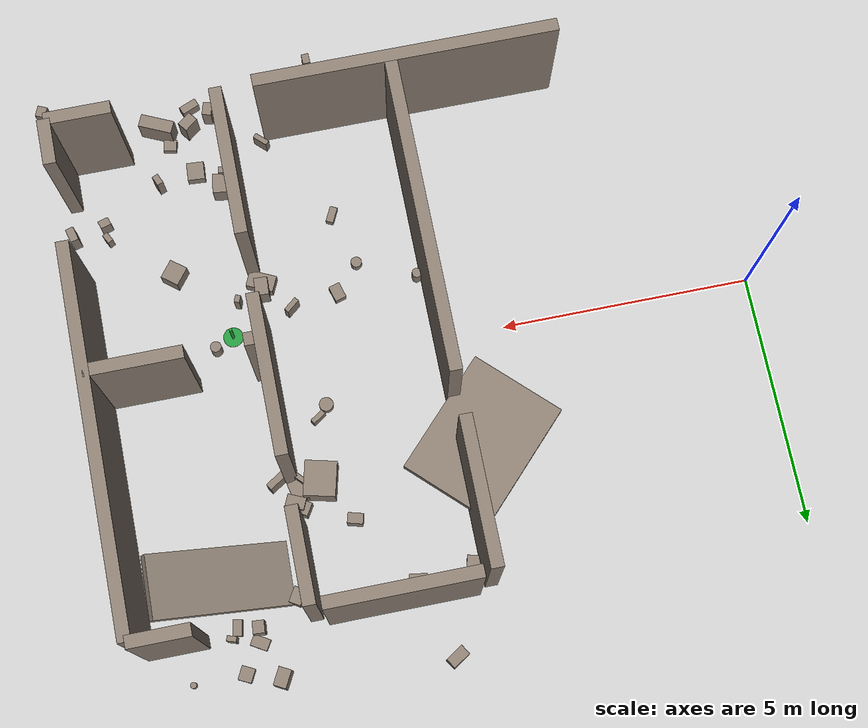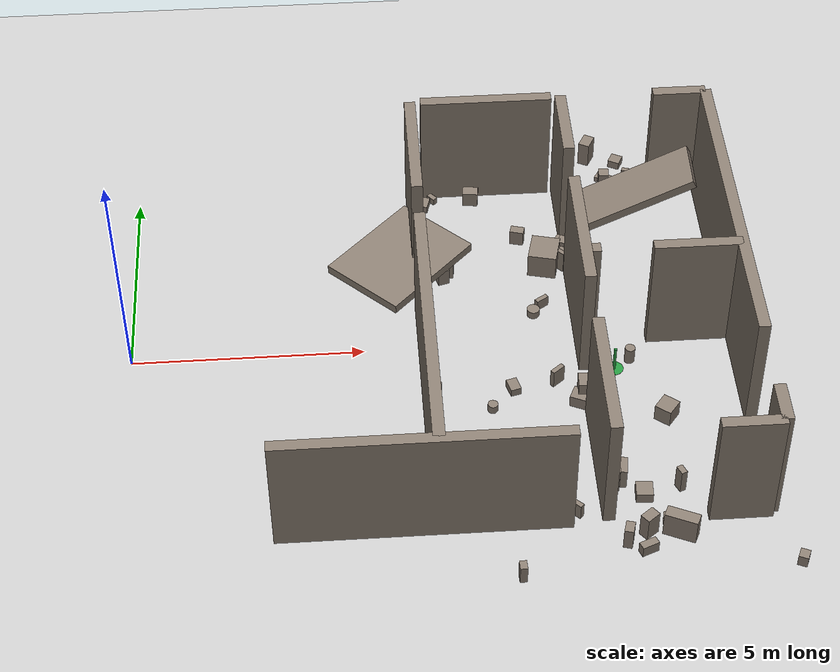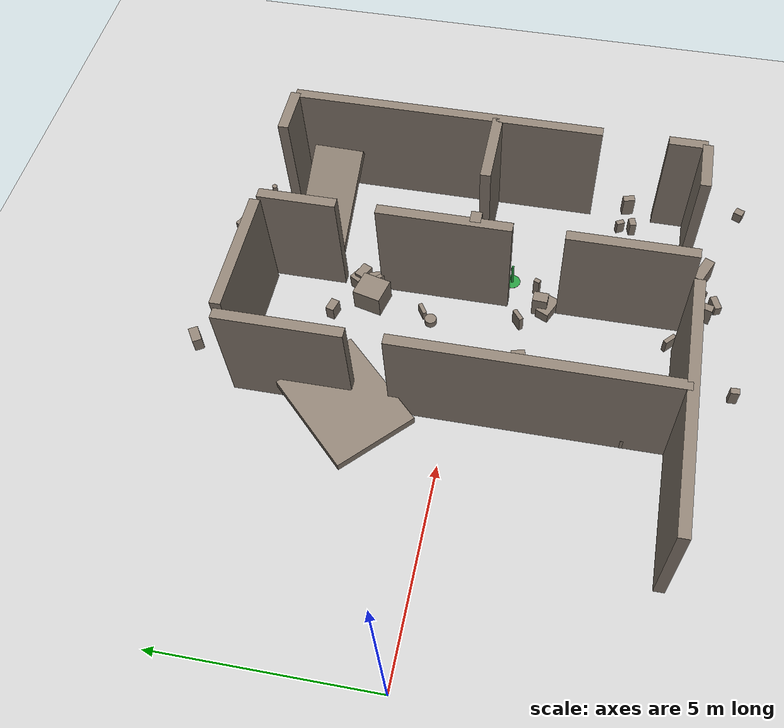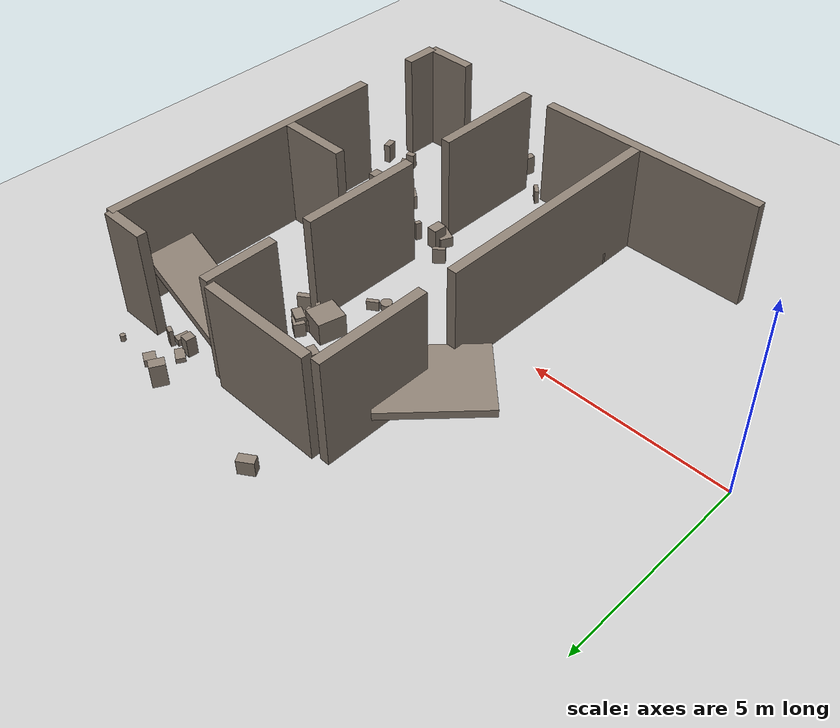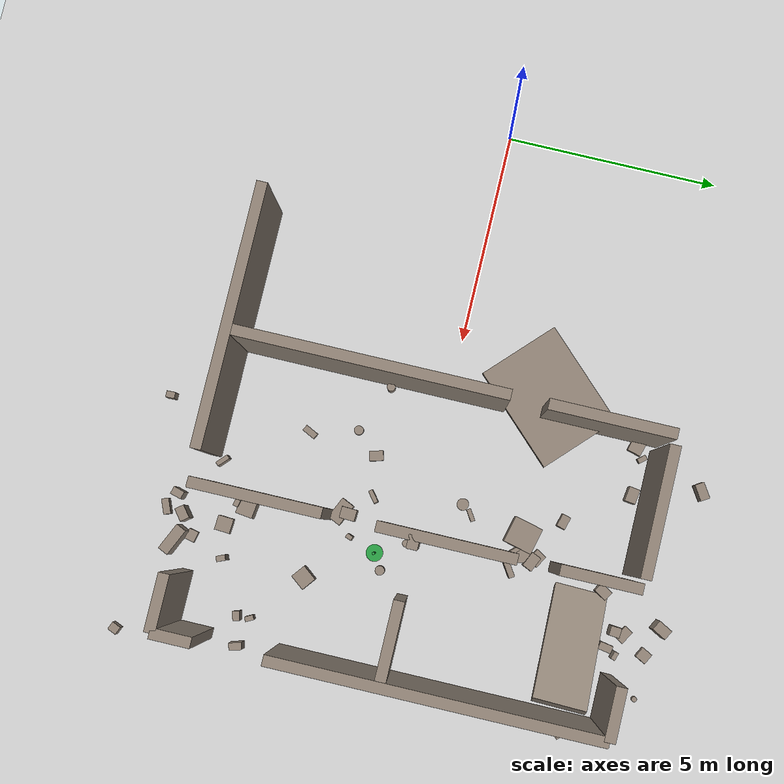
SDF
<sdf version="1.6">
 <world name="default">
  <model name="ground_plane">
   <static>1</static>
   <link name="link">
    <collision name="collision">
     <geometry><plane><normal>0 0 1</normal><size>100 100</size></plane></geometry>
     <surface><friction><ode><mu>100</mu><mu2>50</mu2></ode></friction></surface>
    </collision>
    <visual name="visual">
     <cast_shadows>0</cast_shadows>
     <geometry><plane><normal>0 0 1</normal><size>100 100</size></plane></geometry>
     <material>
      <script><uri>file://media/materials/scripts/gazebo.material</uri><name>Gazebo/Grey</name></script>
     </material>
    </visual>
   </link>
  </model>
  <model name="outer1_0">
   <static>1</static>
   <pose>13.000 -4.543 1.400 0 0.0000 1.5708</pose>
   <link name="l">
    <collision name="c"><geometry><box><size>0.913 0.250 2.800</size></box></geometry></collision>
    <visual name="v">
     <geometry><box><size>0.913 0.250 2.800</size></box></geometry>
     <material><ambient>0.55 0.5 0.45 1</ambient><diffuse>0.55 0.5 0.45 1</diffuse></material>
    </visual>
   </link>
  </model>
  <model name="outer1_1">
   <static>1</static>
   <pose>13.000 1.237 1.400 0 0.0000 1.5708</pose>
   <link name="l">
    <collision name="c"><geometry><box><size>7.526 0.250 2.800</size></box></geometry></collision>
    <visual name="v">
     <geometry><box><size>7.526 0.250 2.800</size></box></geometry>
     <material><ambient>0.55 0.5 0.45 1</ambient><diffuse>0.55 0.5 0.45 1</diffuse></material>
    </visual>
   </link>
  </model>
  <model name="outer2_0">
   <static>1</static>
   <pose>5.992 -5.000 1.400 0 0.0000 0.0000</pose>
   <link name="l">
    <collision name="c"><geometry><box><size>5.985 0.250 2.800</size></box></geometry></collision>
    <visual name="v">
     <geometry><box><size>5.985 0.250 2.800</size></box></geometry>
     <material><ambient>0.55 0.5 0.45 1</ambient><diffuse>0.55 0.5 0.45 1</diffuse></material>
    </visual>
   </link>
  </model>
  <model name="outer2_1">
   <static>1</static>
   <pose>12.352 -5.000 1.400 0 0.0000 0.0000</pose>
   <link name="l">
    <collision name="c"><geometry><box><size>1.296 0.250 2.800</size></box></geometry></collision>
    <visual name="v">
     <geometry><box><size>1.296 0.250 2.800</size></box></geometry>
     <material><ambient>0.55 0.5 0.45 1</ambient><diffuse>0.55 0.5 0.45 1</diffuse></material>
    </visual>
   </link>
  </model>
  <model name="outer3_1">
   <static>1</static>
   <pose>8.014 5.000 1.400 0 0.0000 0.0000</pose>
   <link name="l">
    <collision name="c"><geometry><box><size>2.950 0.250 2.800</size></box></geometry></collision>
    <visual name="v">
     <geometry><box><size>2.950 0.250 2.800</size></box></geometry>
     <material><ambient>0.55 0.5 0.45 1</ambient><diffuse>0.55 0.5 0.45 1</diffuse></material>
    </visual>
   </link>
  </model>
  <model name="outer3_2">
   <static>1</static>
   <pose>12.402 5.000 1.400 0 0.0000 0.0000</pose>
   <link name="l">
    <collision name="c"><geometry><box><size>1.195 0.250 2.800</size></box></geometry></collision>
    <visual name="v">
     <geometry><box><size>1.195 0.250 2.800</size></box></geometry>
     <material><ambient>0.55 0.5 0.45 1</ambient><diffuse>0.55 0.5 0.45 1</diffuse></material>
    </visual>
   </link>
  </model>
  <model name="part0_0">
   <static>1</static>
   <pose>6.300 -1.836 1.400 0 0.0000 1.5708</pose>
   <link name="l">
    <collision name="c"><geometry><box><size>6.328 0.250 2.800</size></box></geometry></collision>
    <visual name="v">
     <geometry><box><size>6.328 0.250 2.800</size></box></geometry>
     <material><ambient>0.55 0.5 0.45 1</ambient><diffuse>0.55 0.5 0.45 1</diffuse></material>
    </visual>
   </link>
  </model>
  <model name="part0_1">
   <static>1</static>
   <pose>6.300 3.576 1.400 0 0.0000 1.5708</pose>
   <link name="l">
    <collision name="c"><geometry><box><size>2.848 0.250 2.800</size></box></geometry></collision>
    <visual name="v">
     <geometry><box><size>2.848 0.250 2.800</size></box></geometry>
     <material><ambient>0.55 0.5 0.45 1</ambient><diffuse>0.55 0.5 0.45 1</diffuse></material>
    </visual>
   </link>
  </model>
  <model name="part1_0">
   <static>1</static>
   <pose>9.700 -3.518 1.400 0 0.0000 1.5708</pose>
   <link name="l">
    <collision name="c"><geometry><box><size>2.964 0.250 2.800</size></box></geometry></collision>
    <visual name="v">
     <geometry><box><size>2.964 0.250 2.800</size></box></geometry>
     <material><ambient>0.55 0.5 0.45 1</ambient><diffuse>0.55 0.5 0.45 1</diffuse></material>
    </visual>
   </link>
  </model>
  <model name="part1_1">
   <static>1</static>
   <pose>9.700 0.699 1.400 0 0.0000 1.5708</pose>
   <link name="l">
    <collision name="c"><geometry><box><size>3.111 0.250 2.800</size></box></geometry></collision>
    <visual name="v">
     <geometry><box><size>3.111 0.250 2.800</size></box></geometry>
     <material><ambient>0.55 0.5 0.45 1</ambient><diffuse>0.55 0.5 0.45 1</diffuse></material>
    </visual>
   </link>
  </model>
  <model name="part1_2">
   <static>1</static>
   <pose>9.700 4.088 1.400 0 0.0000 1.5708</pose>
   <link name="l">
    <collision name="c"><geometry><box><size>1.823 0.250 2.800</size></box></geometry></collision>
    <visual name="v">
     <geometry><box><size>1.823 0.250 2.800</size></box></geometry>
     <material><ambient>0.55 0.5 0.45 1</ambient><diffuse>0.55 0.5 0.45 1</diffuse></material>
    </visual>
   </link>
  </model>
  <model name="back_0">
   <static>1</static>
   <pose>9.856 0.000 1.400 0 0.0000 0.0000</pose>
   <link name="l">
    <collision name="c"><geometry><box><size>0.311 0.250 2.800</size></box></geometry></collision>
    <visual name="v">
     <geometry><box><size>0.311 0.250 2.800</size></box></geometry>
     <material><ambient>0.55 0.5 0.45 1</ambient><diffuse>0.55 0.5 0.45 1</diffuse></material>
    </visual>
   </link>
  </model>
  <model name="back_1">
   <static>1</static>
   <pose>12.061 0.000 1.400 0 0.0000 0.0000</pose>
   <link name="l">
    <collision name="c"><geometry><box><size>1.878 0.250 2.800</size></box></geometry></collision>
    <visual name="v">
     <geometry><box><size>1.878 0.250 2.800</size></box></geometry>
     <material><ambient>0.55 0.5 0.45 1</ambient><diffuse>0.55 0.5 0.45 1</diffuse></material>
    </visual>
   </link>
  </model>
  <model name="rubble_19">
   <static>1</static>
   <pose>13.121 -3.449 0.260 0 0.0000 0.2639</pose>
   <link name="l">
    <collision name="c"><geometry><box><size>0.168 0.287 0.520</size></box></geometry></collision>
    <visual name="v">
     <geometry><box><size>0.168 0.287 0.520</size></box></geometry>
     <material><ambient>0.55 0.5 0.45 1</ambient><diffuse>0.55 0.5 0.45 1</diffuse></material>
    </visual>
   </link>
  </model>
  <model name="rubble_20">
   <static>1</static>
   <pose>12.449 -3.308 0.168 0 0.0000 0.4721</pose>
   <link name="l">
    <collision name="c"><geometry><box><size>0.118 0.201 0.336</size></box></geometry></collision>
    <visual name="v">
     <geometry><box><size>0.118 0.201 0.336</size></box></geometry>
     <material><ambient>0.55 0.5 0.45 1</ambient><diffuse>0.55 0.5 0.45 1</diffuse></material>
    </visual>
   </link>
  </model>
  <model name="rubble_21">
   <static>1</static>
   <pose>12.460 -3.608 0.199 0 0.0000 0.2851</pose>
   <link name="l">
    <collision name="c"><geometry><box><size>0.221 0.160 0.399</size></box></geometry></collision>
    <visual name="v">
     <geometry><box><size>0.221 0.160 0.399</size></box></geometry>
     <material><ambient>0.55 0.5 0.45 1</ambient><diffuse>0.55 0.5 0.45 1</diffuse></material>
    </visual>
   </link>
  </model>
  <model name="rubble_22">
   <static>1</static>
   <pose>11.250 -4.245 0.283 0 0.0000 1.9764</pose>
   <link name="l">
    <collision name="c"><geometry><box><size>0.210 0.132 0.565</size></box></geometry></collision>
    <visual name="v">
     <geometry><box><size>0.210 0.132 0.565</size></box></geometry>
     <material><ambient>0.55 0.5 0.45 1</ambient><diffuse>0.55 0.5 0.45 1</diffuse></material>
    </visual>
   </link>
  </model>
  <model name="rubble_23">
   <static>1</static>
   <pose>9.991 -3.958 0.242 0 0.0000 1.4453</pose>
   <link name="l">
    <collision name="c"><geometry><box><size>0.399 0.385 0.484</size></box></geometry></collision>
    <visual name="v">
     <geometry><box><size>0.399 0.385 0.484</size></box></geometry>
     <material><ambient>0.55 0.5 0.45 1</ambient><diffuse>0.55 0.5 0.45 1</diffuse></material>
    </visual>
   </link>
  </model>
  <model name="rubble_24">
   <static>1</static>
   <pose>10.452 -5.362 0.284 0 0.0000 2.2341</pose>
   <link name="l">
    <collision name="c"><geometry><box><size>0.224 0.320 0.567</size></box></geometry></collision>
    <visual name="v">
     <geometry><box><size>0.224 0.320 0.567</size></box></geometry>
     <material><ambient>0.55 0.5 0.45 1</ambient><diffuse>0.55 0.5 0.45 1</diffuse></material>
    </visual>
   </link>
  </model>
  <model name="rubble_25">
   <static>1</static>
   <pose>11.085 -5.432 0.295 0 0.0000 2.7132</pose>
   <link name="l">
    <collision name="c"><geometry><box><size>0.686 0.257 0.591</size></box></geometry></collision>
    <visual name="v">
     <geometry><box><size>0.686 0.257 0.591</size></box></geometry>
     <material><ambient>0.55 0.5 0.45 1</ambient><diffuse>0.55 0.5 0.45 1</diffuse></material>
    </visual>
   </link>
  </model>
  <model name="rubble_26">
   <static>1</static>
   <pose>10.487 -4.410 0.116 0 0.0000 1.5079</pose>
   <link name="l">
    <collision name="c"><geometry><box><size>0.367 0.347 0.232</size></box></geometry></collision>
    <visual name="v">
     <geometry><box><size>0.367 0.347 0.232</size></box></geometry>
     <material><ambient>0.55 0.5 0.45 1</ambient><diffuse>0.55 0.5 0.45 1</diffuse></material>
    </visual>
   </link>
  </model>
  <model name="rubble_27">
   <static>1</static>
   <pose>10.911 -5.094 0.070 0 0.0000 2.9249</pose>
   <link name="l">
    <collision name="c"><geometry><box><size>0.262 0.233 0.139</size></box></geometry></collision>
    <visual name="v">
     <geometry><box><size>0.262 0.233 0.139</size></box></geometry>
     <material><ambient>0.55 0.5 0.45 1</ambient><diffuse>0.55 0.5 0.45 1</diffuse></material>
    </visual>
   </link>
  </model>
  <model name="rubble_28">
   <static>1</static>
   <pose>9.057 -4.779 0.183 0 0.0000 2.3812</pose>
   <link name="l">
    <collision name="c"><geometry><box><size>0.316 0.105 0.366</size></box></geometry></collision>
    <visual name="v">
     <geometry><box><size>0.316 0.105 0.366</size></box></geometry>
     <material><ambient>0.55 0.5 0.45 1</ambient><diffuse>0.55 0.5 0.45 1</diffuse></material>
    </visual>
   </link>
  </model>
  <model name="rubble_29">
   <static>1</static>
   <pose>9.911 -4.187 0.292 0 0.0000 1.3518</pose>
   <link name="l">
    <collision name="c"><geometry><box><size>0.120 0.203 0.584</size></box></geometry></collision>
    <visual name="v">
     <geometry><box><size>0.120 0.203 0.584</size></box></geometry>
     <material><ambient>0.55 0.5 0.45 1</ambient><diffuse>0.55 0.5 0.45 1</diffuse></material>
    </visual>
   </link>
  </model>
  <model name="rubble_30">
   <static>1</static>
   <pose>10.388 -5.816 0.129 0 0.0000 0.3913</pose>
   <link name="l">
    <collision name="c"><geometry><box><size>0.366 0.168 0.258</size></box></geometry></collision>
    <visual name="v">
     <geometry><box><size>0.366 0.168 0.258</size></box></geometry>
     <material><ambient>0.55 0.5 0.45 1</ambient><diffuse>0.55 0.5 0.45 1</diffuse></material>
    </visual>
   </link>
  </model>
  <model name="rubble_31">
   <static>1</static>
   <pose>10.019 -5.589 0.256 0 0.0000 1.2972</pose>
   <link name="l">
    <collision name="c"><geometry><box><size>0.268 0.187 0.513</size></box></geometry></collision>
    <visual name="v">
     <geometry><box><size>0.268 0.187 0.513</size></box></geometry>
     <material><ambient>0.55 0.5 0.45 1</ambient><diffuse>0.55 0.5 0.45 1</diffuse></material>
    </visual>
   </link>
  </model>
  <model name="rubble_32">
   <static>1</static>
   <pose>11.201 5.745 0.095 0 0.0000 2.6650</pose>
   <link name="l">
    <collision name="c"><geometry><box><size>0.266 0.278 0.190</size></box></geometry></collision>
    <visual name="v">
     <geometry><box><size>0.266 0.278 0.190</size></box></geometry>
     <material><ambient>0.55 0.5 0.45 1</ambient><diffuse>0.55 0.5 0.45 1</diffuse></material>
    </visual>
   </link>
  </model>
  <model name="rubble_33">
   <static>1</static>
   <pose>10.845 5.203 0.062 0 0.0000 2.6069</pose>
   <link name="l">
    <collision name="c"><geometry><box><size>0.347 0.225 0.125</size></box></geometry></collision>
    <visual name="v">
     <geometry><box><size>0.347 0.225 0.125</size></box></geometry>
     <material><ambient>0.55 0.5 0.45 1</ambient><diffuse>0.55 0.5 0.45 1</diffuse></material>
    </visual>
   </link>
  </model>
  <model name="rubble_34">
   <static>1</static>
   <pose>11.221 4.847 0.090 0 0.0000 2.9650</pose>
   <link name="l">
    <collision name="c"><geometry><box><size>0.182 0.311 0.181</size></box></geometry></collision>
    <visual name="v">
     <geometry><box><size>0.182 0.311 0.181</size></box></geometry>
     <material><ambient>0.55 0.5 0.45 1</ambient><diffuse>0.55 0.5 0.45 1</diffuse></material>
    </visual>
   </link>
  </model>
  <model name="rubble_35">
   <static>1</static>
   <pose>10.807 4.944 0.246 0 0.0000 3.0676</pose>
   <link name="l">
    <collision name="c"><geometry><box><size>0.229 0.247 0.492</size></box></geometry></collision>
    <visual name="v">
     <geometry><box><size>0.229 0.247 0.492</size></box></geometry>
     <material><ambient>0.55 0.5 0.45 1</ambient><diffuse>0.55 0.5 0.45 1</diffuse></material>
    </visual>
   </link>
  </model>
  <model name="rubble_36">
   <static>1</static>
   <pose>10.522 5.966 0.299 0 0.0000 1.0816</pose>
   <link name="l">
    <collision name="c"><geometry><box><size>0.364 0.253 0.598</size></box></geometry></collision>
    <visual name="v">
     <geometry><box><size>0.364 0.253 0.598</size></box></geometry>
     <material><ambient>0.55 0.5 0.45 1</ambient><diffuse>0.55 0.5 0.45 1</diffuse></material>
    </visual>
   </link>
  </model>
  <model name="rubble_42">
   <static>1</static>
   <pose>6.778 4.727 0.081 0 0.0000 2.2804</pose>
   <link name="l">
    <collision name="c"><geometry><box><size>0.216 0.119 0.162</size></box></geometry></collision>
    <visual name="v">
     <geometry><box><size>0.216 0.119 0.162</size></box></geometry>
     <material><ambient>0.55 0.5 0.45 1</ambient><diffuse>0.55 0.5 0.45 1</diffuse></material>
    </visual>
   </link>
  </model>
  <model name="rubble_43">
   <static>1</static>
   <pose>6.500 4.549 0.091 0 0.0000 2.8756</pose>
   <link name="l">
    <collision name="c"><geometry><box><size>0.374 0.330 0.181</size></box></geometry></collision>
    <visual name="v">
     <geometry><box><size>0.374 0.330 0.181</size></box></geometry>
     <material><ambient>0.55 0.5 0.45 1</ambient><diffuse>0.55 0.5 0.45 1</diffuse></material>
    </visual>
   </link>
  </model>
  <model name="rubble_45">
   <static>1</static>
   <pose>6.820 2.123 0.199 0 0.0000 0.2914</pose>
   <link name="l">
    <collision name="c"><geometry><box><size>0.252 0.337 0.398</size></box></geometry></collision>
    <visual name="v">
     <geometry><box><size>0.252 0.337 0.398</size></box></geometry>
     <material><ambient>0.55 0.5 0.45 1</ambient><diffuse>0.55 0.5 0.45 1</diffuse></material>
    </visual>
   </link>
  </model>
  <model name="rubble_46">
   <static>1</static>
   <pose>6.761 2.348 0.252 0 0.0000 3.0254</pose>
   <link name="l">
    <collision name="c"><geometry><box><size>0.695 0.332 0.504</size></box></geometry></collision>
    <visual name="v">
     <geometry><box><size>0.695 0.332 0.504</size></box></geometry>
     <material><ambient>0.55 0.5 0.45 1</ambient><diffuse>0.55 0.5 0.45 1</diffuse></material>
    </visual>
   </link>
  </model>
  <model name="rubble_48">
   <static>1</static>
   <pose>6.154 2.716 0.271 0 0.0000 1.3277</pose>
   <link name="l">
    <collision name="c"><geometry><box><size>0.334 0.246 0.541</size></box></geometry></collision>
    <visual name="v">
     <geometry><box><size>0.334 0.246 0.541</size></box></geometry>
     <material><ambient>0.55 0.5 0.45 1</ambient><diffuse>0.55 0.5 0.45 1</diffuse></material>
    </visual>
   </link>
  </model>
  <model name="rubble_49">
   <static>1</static>
   <pose>5.948 2.048 0.114 0 0.0000 2.5027</pose>
   <link name="l">
    <collision name="c"><geometry><box><size>0.610 0.395 0.228</size></box></geometry></collision>
    <visual name="v">
     <geometry><box><size>0.610 0.395 0.228</size></box></geometry>
     <material><ambient>0.55 0.5 0.45 1</ambient><diffuse>0.55 0.5 0.45 1</diffuse></material>
    </visual>
   </link>
  </model>
  <model name="rubble_50">
   <static>1</static>
   <pose>9.522 2.297 0.264 0 0.0000 2.3385</pose>
   <link name="l">
    <collision name="c"><geometry><box><size>0.222 0.100 0.529</size></box></geometry></collision>
    <visual name="v">
     <geometry><box><size>0.222 0.100 0.529</size></box></geometry>
     <material><ambient>0.55 0.5 0.45 1</ambient><diffuse>0.55 0.5 0.45 1</diffuse></material>
    </visual>
   </link>
  </model>
  <model name="rubble_51">
   <static>1</static>
   <pose>9.144 2.391 0.295 0 0.0000 1.3324</pose>
   <link name="l">
    <collision name="c"><geometry><box><size>0.692 0.630 0.590</size></box></geometry></collision>
    <visual name="v">
     <geometry><box><size>0.692 0.630 0.590</size></box></geometry>
     <material><ambient>0.55 0.5 0.45 1</ambient><diffuse>0.55 0.5 0.45 1</diffuse></material>
    </visual>
   </link>
  </model>
  <model name="rubble_52">
   <static>1</static>
   <pose>9.691 2.729 0.228 0 0.0000 2.7137</pose>
   <link name="l">
    <collision name="c"><geometry><box><size>0.374 0.243 0.457</size></box></geometry></collision>
    <visual name="v">
     <geometry><box><size>0.374 0.243 0.457</size></box></geometry>
     <material><ambient>0.55 0.5 0.45 1</ambient><diffuse>0.55 0.5 0.45 1</diffuse></material>
    </visual>
   </link>
  </model>
  <model name="rubble_53">
   <static>1</static>
   <pose>9.613 2.508 0.174 0 0.0000 0.2317</pose>
   <link name="l">
    <collision name="c"><geometry><box><size>0.292 0.426 0.349</size></box></geometry></collision>
    <visual name="v">
     <geometry><box><size>0.292 0.426 0.349</size></box></geometry>
     <material><ambient>0.55 0.5 0.45 1</ambient><diffuse>0.55 0.5 0.45 1</diffuse></material>
    </visual>
   </link>
  </model>
  <model name="rubble_54">
   <static>1</static>
   <pose>9.987 2.256 0.258 0 0.0000 2.1490</pose>
   <link name="l">
    <collision name="c"><geometry><box><size>0.137 0.380 0.515</size></box></geometry></collision>
    <visual name="v">
     <geometry><box><size>0.137 0.380 0.515</size></box></geometry>
     <material><ambient>0.55 0.5 0.45 1</ambient><diffuse>0.55 0.5 0.45 1</diffuse></material>
    </visual>
   </link>
  </model>
  <model name="rubble_55">
   <static>1</static>
   <pose>9.586 2.834 0.188 0 0.0000 2.5948</pose>
   <link name="l">
    <collision name="c"><geometry><box><size>0.313 0.271 0.375</size></box></geometry></collision>
    <visual name="v">
     <geometry><box><size>0.313 0.271 0.375</size></box></geometry>
     <material><ambient>0.55 0.5 0.45 1</ambient><diffuse>0.55 0.5 0.45 1</diffuse></material>
    </visual>
   </link>
  </model>
  <model name="rubble_56">
   <static>1</static>
   <pose>8.124 -1.337 0.091 0 0.0000 1.8485</pose>
   <link name="l">
    <collision name="c"><geometry><box><size>0.326 0.232 0.181</size></box></geometry></collision>
    <visual name="v">
     <geometry><box><size>0.326 0.232 0.181</size></box></geometry>
     <material><ambient>0.55 0.5 0.45 1</ambient><diffuse>0.55 0.5 0.45 1</diffuse></material>
    </visual>
   </link>
  </model>
  <model name="rubble_57">
   <static>1</static>
   <pose>9.590 -1.640 0.276 0 0.0000 1.5221</pose>
   <link name="l">
    <collision name="c"><geometry><box><size>0.359 0.269 0.551</size></box></geometry></collision>
    <visual name="v">
     <geometry><box><size>0.359 0.269 0.551</size></box></geometry>
     <material><ambient>0.55 0.5 0.45 1</ambient><diffuse>0.55 0.5 0.45 1</diffuse></material>
    </visual>
   </link>
  </model>
  <model name="rubble_58">
   <static>1</static>
   <pose>9.579 -1.831 0.139 0 0.0000 1.1398</pose>
   <link name="l">
    <collision name="c"><geometry><box><size>0.329 0.554 0.278</size></box></geometry></collision>
    <visual name="v">
     <geometry><box><size>0.329 0.554 0.278</size></box></geometry>
     <material><ambient>0.55 0.5 0.45 1</ambient><diffuse>0.55 0.5 0.45 1</diffuse></material>
    </visual>
   </link>
  </model>
  <model name="rubble_59">
   <static>1</static>
   <pose>10.100 -1.494 0.249 0 0.0000 2.7753</pose>
   <link name="l">
    <collision name="c"><geometry><box><size>0.107 0.149 0.499</size></box></geometry></collision>
    <visual name="v">
     <geometry><box><size>0.107 0.149 0.499</size></box></geometry>
     <material><ambient>0.55 0.5 0.45 1</ambient><diffuse>0.55 0.5 0.45 1</diffuse></material>
    </visual>
   </link>
  </model>
  <model name="rubble_60">
   <static>1</static>
   <pose>9.069 -1.177 0.215 0 0.0000 2.2517</pose>
   <link name="l">
    <collision name="c"><geometry><box><size>0.104 0.314 0.430</size></box></geometry></collision>
    <visual name="v">
     <geometry><box><size>0.104 0.314 0.430</size></box></geometry>
     <material><ambient>0.55 0.5 0.45 1</ambient><diffuse>0.55 0.5 0.45 1</diffuse></material>
    </visual>
   </link>
  </model>
  <model name="leaning_0">
   <static>1</static>
   <pose>11.361 3.978 0.757 0 0.4809 3.1165</pose>
   <link name="l">
    <collision name="c"><geometry><box><size>2.889 1.237 0.200</size></box></geometry></collision>
    <visual name="v">
     <geometry><box><size>2.889 1.237 0.200</size></box></geometry>
     <material><ambient>0.55 0.5 0.45 1</ambient><diffuse>0.55 0.5 0.45 1</diffuse></material>
    </visual>
   </link>
  </model>
  <model name="floor_0">
   <static>1</static>
   <pose>5.912 2.253 0.600 0 0.0000 0.8047</pose>
   <link name="l">
    <collision name="c"><geometry><box><size>2.585 1.981 0.200</size></box></geometry></collision>
    <visual name="v">
     <geometry><box><size>2.585 1.981 0.200</size></box></geometry>
     <material><ambient>0.55 0.5 0.45 1</ambient><diffuse>0.55 0.5 0.45 1</diffuse></material>
    </visual>
   </link>
  </model>
  <model name="debris_1">
   <static>1</static>
   <pose>8.764 0.886 0.088 0 0.0000 0.0000</pose>
   <link name="l">
    <collision name="c">
     <geometry><cylinder><radius>0.140</radius><length>0.176</length></cylinder></geometry>
    </collision>
    <visual name="v">
     <geometry><cylinder><radius>0.140</radius><length>0.176</length></cylinder></geometry>
     <material><ambient>0.55 0.5 0.45 1</ambient><diffuse>0.55 0.5 0.45 1</diffuse></material>
    </visual>
   </link>
  </model>
  <model name="debris_7">
   <static>1</static>
   <pose>9.949 -0.193 0.207 0 0.0000 0.0000</pose>
   <link name="l">
    <collision name="c">
     <geometry><cylinder><radius>0.082</radius><length>0.414</length></cylinder></geometry>
    </collision>
    <visual name="v">
     <geometry><cylinder><radius>0.082</radius><length>0.414</length></cylinder></geometry>
     <material><ambient>0.55 0.5 0.45 1</ambient><diffuse>0.55 0.5 0.45 1</diffuse></material>
    </visual>
   </link>
  </model>
  <model name="debris_9">
   <static>1</static>
   <pose>8.968 1.121 0.129 0 0.0000 0.5744</pose>
   <link name="l">
    <collision name="c"><geometry><box><size>0.301 0.102 0.259</size></box></geometry></collision>
    <visual name="v">
     <geometry><box><size>0.301 0.102 0.259</size></box></geometry>
     <material><ambient>0.55 0.5 0.45 1</ambient><diffuse>0.55 0.5 0.45 1</diffuse></material>
    </visual>
   </link>
  </model>
  <model name="debris_12">
   <static>1</static>
   <pose>8.623 3.249 0.184 0 0.0000 2.8749</pose>
   <link name="l">
    <collision name="c"><geometry><box><size>0.307 0.207 0.368</size></box></geometry></collision>
    <visual name="v">
     <geometry><box><size>0.307 0.207 0.368</size></box></geometry>
     <material><ambient>0.55 0.5 0.45 1</ambient><diffuse>0.55 0.5 0.45 1</diffuse></material>
    </visual>
   </link>
  </model>
  <model name="debris_15">
   <static>1</static>
   <pose>10.692 -0.636 0.190 0 0.0000 0.0000</pose>
   <link name="l">
    <collision name="c">
     <geometry><cylinder><radius>0.110</radius><length>0.381</length></cylinder></geometry>
    </collision>
    <visual name="v">
     <geometry><cylinder><radius>0.110</radius><length>0.381</length></cylinder></geometry>
     <material><ambient>0.55 0.5 0.45 1</ambient><diffuse>0.55 0.5 0.45 1</diffuse></material>
    </visual>
   </link>
  </model>
  <model name="debris_17">
   <static>1</static>
   <pose>11.347 5.058 0.220 0 0.0000 1.2590</pose>
   <link name="l">
    <collision name="c"><geometry><box><size>0.103 0.188 0.440</size></box></geometry></collision>
    <visual name="v">
     <geometry><box><size>0.103 0.188 0.440</size></box></geometry>
     <material><ambient>0.55 0.5 0.45 1</ambient><diffuse>0.55 0.5 0.45 1</diffuse></material>
    </visual>
   </link>
  </model>
  <model name="debris_25">
   <static>1</static>
   <pose>6.236 -3.915 0.153 0 0.0000 0.0000</pose>
   <link name="l">
    <collision name="c">
     <geometry><cylinder><radius>0.070</radius><length>0.305</length></cylinder></geometry>
    </collision>
    <visual name="v">
     <geometry><cylinder><radius>0.070</radius><length>0.305</length></cylinder></geometry>
     <material><ambient>0.55 0.5 0.45 1</ambient><diffuse>0.55 0.5 0.45 1</diffuse></material>
    </visual>
   </link>
  </model>
  <model name="debris_26">
   <static>1</static>
   <pose>7.662 4.660 0.178 0 0.0000 3.0044</pose>
   <link name="l">
    <collision name="c"><geometry><box><size>0.349 0.257 0.356</size></box></geometry></collision>
    <visual name="v">
     <geometry><box><size>0.349 0.257 0.356</size></box></geometry>
     <material><ambient>0.55 0.5 0.45 1</ambient><diffuse>0.55 0.5 0.45 1</diffuse></material>
    </visual>
   </link>
  </model>
  <model name="debris_27">
   <static>1</static>
   <pose>12.226 5.751 0.081 0 0.0000 0.0000</pose>
   <link name="l">
    <collision name="c">
     <geometry><cylinder><radius>0.062</radius><length>0.161</length></cylinder></geometry>
    </collision>
    <visual name="v">
     <geometry><cylinder><radius>0.062</radius><length>0.161</length></cylinder></geometry>
     <material><ambient>0.55 0.5 0.45 1</ambient><diffuse>0.55 0.5 0.45 1</diffuse></material>
    </visual>
   </link>
  </model>
  <model name="debris_28">
   <static>1</static>
   <pose>7.936 -2.974 0.082 0 0.0000 2.6845</pose>
   <link name="l">
    <collision name="c"><geometry><box><size>0.152 0.329 0.164</size></box></geometry></collision>
    <visual name="v">
     <geometry><box><size>0.152 0.329 0.164</size></box></geometry>
     <material><ambient>0.55 0.5 0.45 1</ambient><diffuse>0.55 0.5 0.45 1</diffuse></material>
    </visual>
   </link>
  </model>
  <model name="debris_29">
   <static>1</static>
   <pose>6.494 -1.365 0.181 0 0.0000 0.0000</pose>
   <link name="l">
    <collision name="c">
     <geometry><cylinder><radius>0.096</radius><length>0.361</length></cylinder></geometry>
    </collision>
    <visual name="v">
     <geometry><cylinder><radius>0.096</radius><length>0.361</length></cylinder></geometry>
     <material><ambient>0.55 0.5 0.45 1</ambient><diffuse>0.55 0.5 0.45 1</diffuse></material>
    </visual>
   </link>
  </model>
  <model name="debris_30">
   <static>1</static>
   <pose>7.209 6.217 0.189 0 0.0000 0.5739</pose>
   <link name="l">
    <collision name="c"><geometry><box><size>0.396 0.225 0.378</size></box></geometry></collision>
    <visual name="v">
     <geometry><box><size>0.396 0.225 0.378</size></box></geometry>
     <material><ambient>0.55 0.5 0.45 1</ambient><diffuse>0.55 0.5 0.45 1</diffuse></material>
    </visual>
   </link>
  </model>
  <model name="debris_32">
   <static>1</static>
   <pose>13.312 4.126 0.187 0 0.0000 0.7769</pose>
   <link name="l">
    <collision name="c"><geometry><box><size>0.354 0.177 0.375</size></box></geometry></collision>
    <visual name="v">
     <geometry><box><size>0.354 0.177 0.375</size></box></geometry>
     <material><ambient>0.55 0.5 0.45 1</ambient><diffuse>0.55 0.5 0.45 1</diffuse></material>
    </visual>
   </link>
  </model>
  <model name="debris_33">
   <static>1</static>
   <pose>9.982 4.497 0.181 0 0.0000 1.0238</pose>
   <link name="l">
    <collision name="c"><geometry><box><size>0.324 0.241 0.362</size></box></geometry></collision>
    <visual name="v">
     <geometry><box><size>0.324 0.241 0.362</size></box></geometry>
     <material><ambient>0.55 0.5 0.45 1</ambient><diffuse>0.55 0.5 0.45 1</diffuse></material>
    </visual>
   </link>
  </model>
  <model name="debris_34">
   <static>1</static>
   <pose>11.255 -2.308 0.194 0 0.0000 0.9106</pose>
   <link name="l">
    <collision name="c"><geometry><box><size>0.398 0.376 0.389</size></box></geometry></collision>
    <visual name="v">
     <geometry><box><size>0.398 0.376 0.389</size></box></geometry>
     <material><ambient>0.55 0.5 0.45 1</ambient><diffuse>0.55 0.5 0.45 1</diffuse></material>
    </visual>
   </link>
  </model>
  <model name="debris_36">
   <static>1</static>
   <pose>7.636 -1.875 0.094 0 0.0000 0.0000</pose>
   <link name="l">
    <collision name="c">
     <geometry><cylinder><radius>0.109</radius><length>0.188</length></cylinder></geometry>
    </collision>
    <visual name="v">
     <geometry><cylinder><radius>0.109</radius><length>0.188</length></cylinder></geometry>
     <material><ambient>0.55 0.5 0.45 1</ambient><diffuse>0.55 0.5 0.45 1</diffuse></material>
    </visual>
   </link>
  </model>
  <model name="debris_37">
   <static>1</static>
   <pose>7.847 -6.317 0.213 0 0.0000 0.0374</pose>
   <link name="l">
    <collision name="c"><geometry><box><size>0.148 0.206 0.427</size></box></geometry></collision>
    <visual name="v">
     <geometry><box><size>0.148 0.206 0.427</size></box></geometry>
     <material><ambient>0.55 0.5 0.45 1</ambient><diffuse>0.55 0.5 0.45 1</diffuse></material>
    </visual>
   </link>
  </model>
  <model name="debris_39">
   <static>1</static>
   <pose>13.156 -1.757 0.095 0 0.0000 1.1694</pose>
   <link name="l">
    <collision name="c"><geometry><box><size>0.297 0.315 0.190</size></box></geometry></collision>
    <visual name="v">
     <geometry><box><size>0.297 0.315 0.190</size></box></geometry>
     <material><ambient>0.55 0.5 0.45 1</ambient><diffuse>0.55 0.5 0.45 1</diffuse></material>
    </visual>
   </link>
  </model>
  <model name="debris_43">
   <static>1</static>
   <pose>13.386 -6.294 0.132 0 0.0000 2.7307</pose>
   <link name="l">
    <collision name="c"><geometry><box><size>0.200 0.222 0.265</size></box></geometry></collision>
    <visual name="v">
     <geometry><box><size>0.200 0.222 0.265</size></box></geometry>
     <material><ambient>0.55 0.5 0.45 1</ambient><diffuse>0.55 0.5 0.45 1</diffuse></material>
    </visual>
   </link>
  </model>
  <model name="goal_marker">
   <static>1</static>
   <pose>10.336 -0.862 0 0 0 0</pose>
   <link name="l">
    <visual name="pad">
     <pose>0 0 0.005 0 0 0</pose>
     <geometry><cylinder><radius>0.2</radius><length>0.01</length></cylinder></geometry>
     <material><ambient>0.15 0.6 0.25 1</ambient><diffuse>0.15 0.6 0.25 1</diffuse></material>
    </visual>
    <visual name="pole">
     <pose>0 0 0.3 0 0 0</pose>
     <geometry><cylinder><radius>0.03</radius><length>0.6</length></cylinder></geometry>
     <material><ambient>0.15 0.6 0.25 1</ambient><diffuse>0.15 0.6 0.25 1</diffuse></material>
    </visual>
   </link>
  </model>
 </world>
</sdf>
